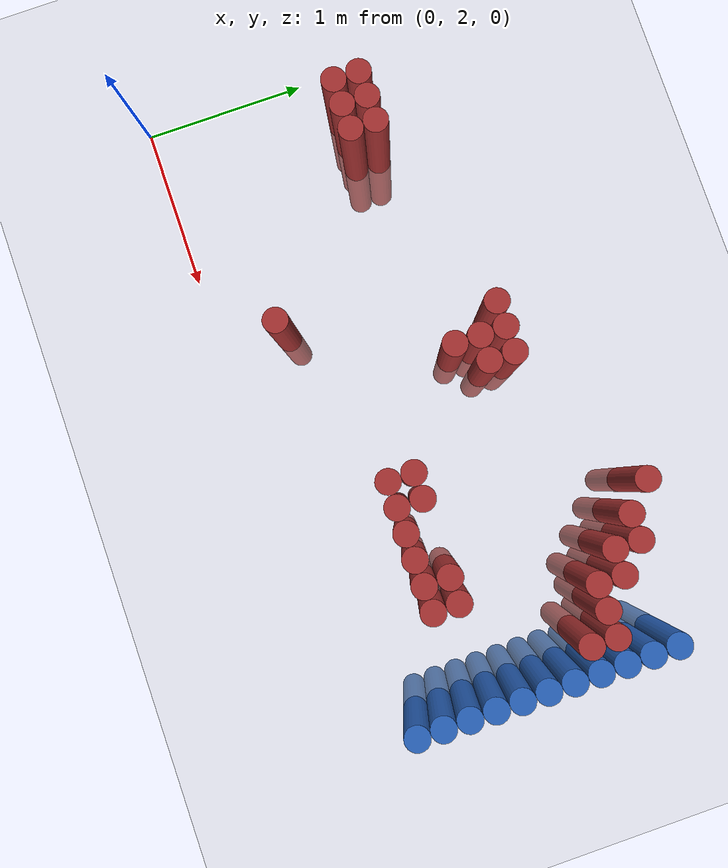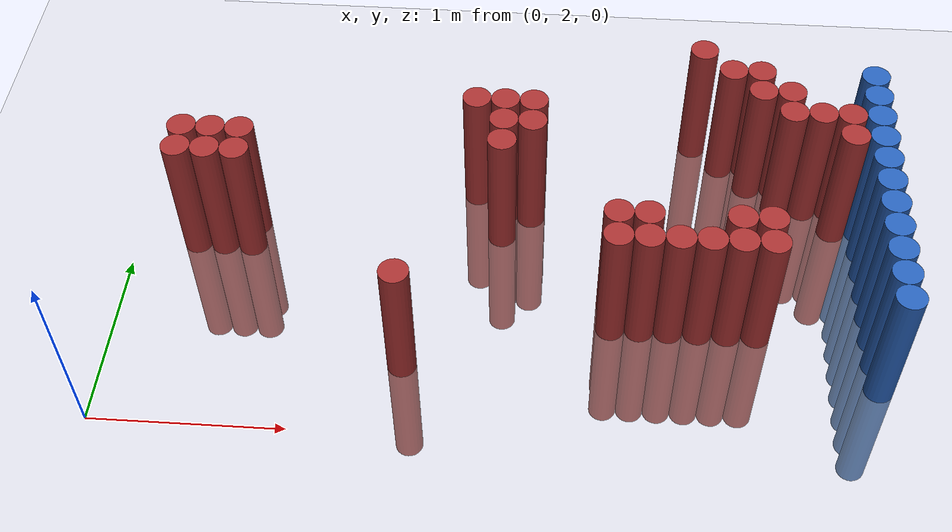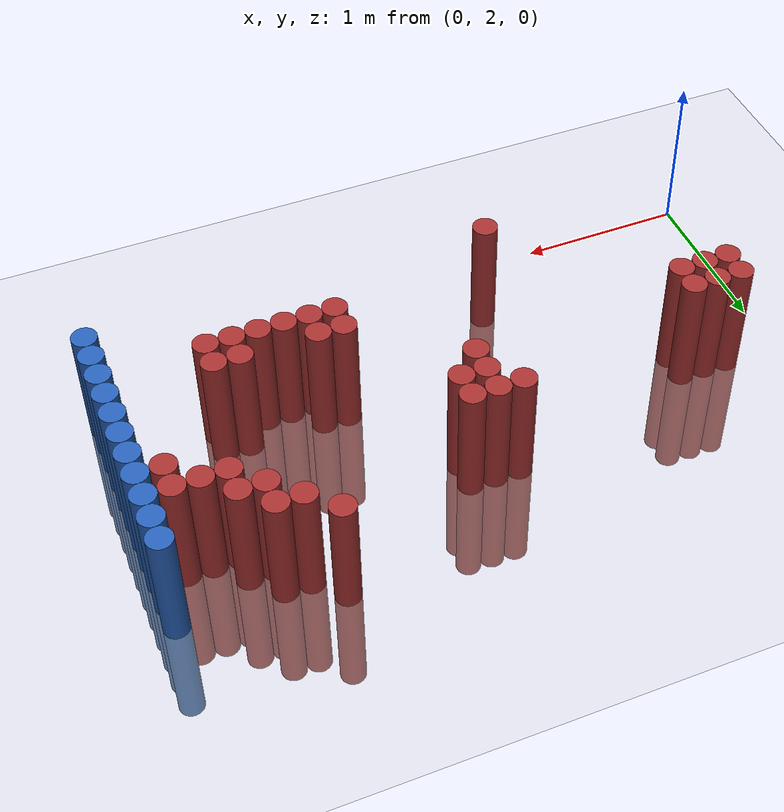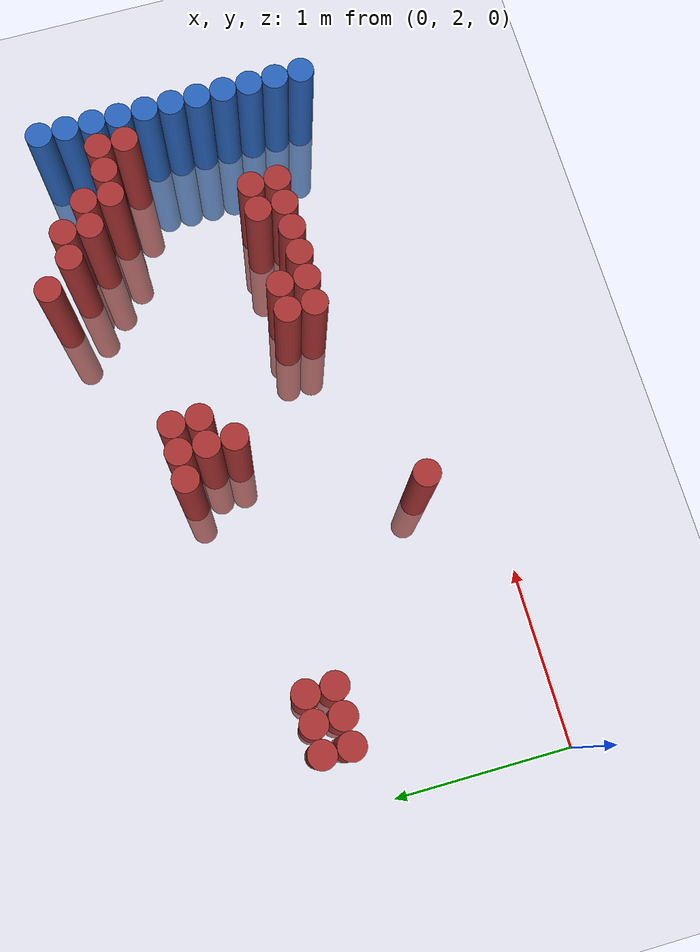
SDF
<sdf version="1.6">
 <world name="default">
  <model name="ground_plane">
   <static>1</static>
   <link name="link">
    <collision name="collision">
     <geometry><plane><normal>0 0 1</normal><size>100 100</size></plane></geometry>
     <surface><friction><ode><mu>100</mu><mu2>50</mu2></ode></friction></surface>
    </collision>
    <visual name="visual">
     <cast_shadows>0</cast_shadows>
     <geometry><plane><normal>0 0 1</normal><size>100 100</size></plane></geometry>
     <material>
      <script><uri>file://media/materials/scripts/gazebo.material</uri><name>Gazebo/Grey</name></script>
     </material>
    </visual>
   </link>
  </model>
  <model name="unit_cylinder_146">
   <static>1</static>
   <pose>3.925000 2.425000 0.000000 0.000000 0.000000 0.000000</pose>
   <link name="link">
    <inertial>
     <mass>1</mass>
     <inertia><ixx>0.145833</ixx><ixy>0</ixy><ixz>0</ixz><iyy>0.145833</iyy><iyz>0</iyz><izz>0.125</izz></inertia>
    </inertial>
    <collision name="collision">
     <geometry><cylinder><radius>0.075000</radius><length>1.5</length></cylinder></geometry>
    </collision>
    <visual name="visual">
     <geometry><cylinder><radius>0.075000</radius><length>1.5</length></cylinder></geometry>
     <material>
      <ambient>0.152000 0.379000 0.720000 1</ambient>
      <diffuse>0.152000 0.379000 0.720000 1</diffuse>
     </material>
     <material>
      <script><name>Gazebo/Grey</name><uri>file://media/materials/scripts/gazebo.material</uri></script>
     </material>
    </visual>
   </link>
  </model>
  <model name="unit_cylinder_148">
   <static>1</static>
   <pose>3.925000 2.575000 0.000000 0.000000 0.000000 0.000000</pose>
   <link name="link">
    <inertial>
     <mass>1</mass>
     <inertia><ixx>0.145833</ixx><ixy>0</ixy><ixz>0</ixz><iyy>0.145833</iyy><iyz>0</iyz><izz>0.125</izz></inertia>
    </inertial>
    <collision name="collision">
     <geometry><cylinder><radius>0.075000</radius><length>1.5</length></cylinder></geometry>
    </collision>
    <visual name="visual">
     <geometry><cylinder><radius>0.075000</radius><length>1.5</length></cylinder></geometry>
     <material>
      <ambient>0.152000 0.379000 0.720000 1</ambient>
      <diffuse>0.152000 0.379000 0.720000 1</diffuse>
     </material>
     <material>
      <script><name>Gazebo/Grey</name><uri>file://media/materials/scripts/gazebo.material</uri></script>
     </material>
    </visual>
   </link>
  </model>
  <model name="unit_cylinder_150">
   <static>1</static>
   <pose>3.925000 2.725000 0.000000 0.000000 0.000000 0.000000</pose>
   <link name="link">
    <inertial>
     <mass>1</mass>
     <inertia><ixx>0.145833</ixx><ixy>0</ixy><ixz>0</ixz><iyy>0.145833</iyy><iyz>0</iyz><izz>0.125</izz></inertia>
    </inertial>
    <collision name="collision">
     <geometry><cylinder><radius>0.075000</radius><length>1.5</length></cylinder></geometry>
    </collision>
    <visual name="visual">
     <geometry><cylinder><radius>0.075000</radius><length>1.5</length></cylinder></geometry>
     <material>
      <ambient>0.152000 0.379000 0.720000 1</ambient>
      <diffuse>0.152000 0.379000 0.720000 1</diffuse>
     </material>
     <material>
      <script><name>Gazebo/Grey</name><uri>file://media/materials/scripts/gazebo.material</uri></script>
     </material>
    </visual>
   </link>
  </model>
  <model name="unit_cylinder_152">
   <static>1</static>
   <pose>3.925000 2.875000 0.000000 0.000000 0.000000 0.000000</pose>
   <link name="link">
    <inertial>
     <mass>1</mass>
     <inertia><ixx>0.145833</ixx><ixy>0</ixy><ixz>0</ixz><iyy>0.145833</iyy><iyz>0</iyz><izz>0.125</izz></inertia>
    </inertial>
    <collision name="collision">
     <geometry><cylinder><radius>0.075000</radius><length>1.5</length></cylinder></geometry>
    </collision>
    <visual name="visual">
     <geometry><cylinder><radius>0.075000</radius><length>1.5</length></cylinder></geometry>
     <material>
      <ambient>0.152000 0.379000 0.720000 1</ambient>
      <diffuse>0.152000 0.379000 0.720000 1</diffuse>
     </material>
     <material>
      <script><name>Gazebo/Grey</name><uri>file://media/materials/scripts/gazebo.material</uri></script>
     </material>
    </visual>
   </link>
  </model>
  <model name="unit_cylinder_154">
   <static>1</static>
   <pose>3.925000 3.025000 0.000000 0.000000 0.000000 0.000000</pose>
   <link name="link">
    <inertial>
     <mass>1</mass>
     <inertia><ixx>0.145833</ixx><ixy>0</ixy><ixz>0</ixz><iyy>0.145833</iyy><iyz>0</iyz><izz>0.125</izz></inertia>
    </inertial>
    <collision name="collision">
     <geometry><cylinder><radius>0.075000</radius><length>1.5</length></cylinder></geometry>
    </collision>
    <visual name="visual">
     <geometry><cylinder><radius>0.075000</radius><length>1.5</length></cylinder></geometry>
     <material>
      <ambient>0.152000 0.379000 0.720000 1</ambient>
      <diffuse>0.152000 0.379000 0.720000 1</diffuse>
     </material>
     <material>
      <script><name>Gazebo/Grey</name><uri>file://media/materials/scripts/gazebo.material</uri></script>
     </material>
    </visual>
   </link>
  </model>
  <model name="unit_cylinder_156">
   <static>1</static>
   <pose>3.925000 3.175000 0.000000 0.000000 0.000000 0.000000</pose>
   <link name="link">
    <inertial>
     <mass>1</mass>
     <inertia><ixx>0.145833</ixx><ixy>0</ixy><ixz>0</ixz><iyy>0.145833</iyy><iyz>0</iyz><izz>0.125</izz></inertia>
    </inertial>
    <collision name="collision">
     <geometry><cylinder><radius>0.075000</radius><length>1.5</length></cylinder></geometry>
    </collision>
    <visual name="visual">
     <geometry><cylinder><radius>0.075000</radius><length>1.5</length></cylinder></geometry>
     <material>
      <ambient>0.152000 0.379000 0.720000 1</ambient>
      <diffuse>0.152000 0.379000 0.720000 1</diffuse>
     </material>
     <material>
      <script><name>Gazebo/Grey</name><uri>file://media/materials/scripts/gazebo.material</uri></script>
     </material>
    </visual>
   </link>
  </model>
  <model name="unit_cylinder_158">
   <static>1</static>
   <pose>3.925000 3.325000 0.000000 0.000000 0.000000 0.000000</pose>
   <link name="link">
    <inertial>
     <mass>1</mass>
     <inertia><ixx>0.145833</ixx><ixy>0</ixy><ixz>0</ixz><iyy>0.145833</iyy><iyz>0</iyz><izz>0.125</izz></inertia>
    </inertial>
    <collision name="collision">
     <geometry><cylinder><radius>0.075000</radius><length>1.5</length></cylinder></geometry>
    </collision>
    <visual name="visual">
     <geometry><cylinder><radius>0.075000</radius><length>1.5</length></cylinder></geometry>
     <material>
      <ambient>0.152000 0.379000 0.720000 1</ambient>
      <diffuse>0.152000 0.379000 0.720000 1</diffuse>
     </material>
     <material>
      <script><name>Gazebo/Grey</name><uri>file://media/materials/scripts/gazebo.material</uri></script>
     </material>
    </visual>
   </link>
  </model>
  <model name="unit_cylinder_160">
   <static>1</static>
   <pose>3.925000 3.475000 0.000000 0.000000 0.000000 0.000000</pose>
   <link name="link">
    <inertial>
     <mass>1</mass>
     <inertia><ixx>0.145833</ixx><ixy>0</ixy><ixz>0</ixz><iyy>0.145833</iyy><iyz>0</iyz><izz>0.125</izz></inertia>
    </inertial>
    <collision name="collision">
     <geometry><cylinder><radius>0.075000</radius><length>1.5</length></cylinder></geometry>
    </collision>
    <visual name="visual">
     <geometry><cylinder><radius>0.075000</radius><length>1.5</length></cylinder></geometry>
     <material>
      <ambient>0.152000 0.379000 0.720000 1</ambient>
      <diffuse>0.152000 0.379000 0.720000 1</diffuse>
     </material>
     <material>
      <script><name>Gazebo/Grey</name><uri>file://media/materials/scripts/gazebo.material</uri></script>
     </material>
    </visual>
   </link>
  </model>
  <model name="unit_cylinder_162">
   <static>1</static>
   <pose>3.925000 3.625000 0.000000 0.000000 0.000000 0.000000</pose>
   <link name="link">
    <inertial>
     <mass>1</mass>
     <inertia><ixx>0.145833</ixx><ixy>0</ixy><ixz>0</ixz><iyy>0.145833</iyy><iyz>0</iyz><izz>0.125</izz></inertia>
    </inertial>
    <collision name="collision">
     <geometry><cylinder><radius>0.075000</radius><length>1.5</length></cylinder></geometry>
    </collision>
    <visual name="visual">
     <geometry><cylinder><radius>0.075000</radius><length>1.5</length></cylinder></geometry>
     <material>
      <ambient>0.152000 0.379000 0.720000 1</ambient>
      <diffuse>0.152000 0.379000 0.720000 1</diffuse>
     </material>
     <material>
      <script><name>Gazebo/Grey</name><uri>file://media/materials/scripts/gazebo.material</uri></script>
     </material>
    </visual>
   </link>
  </model>
  <model name="unit_cylinder_164">
   <static>1</static>
   <pose>3.925000 3.775000 0.000000 0.000000 0.000000 0.000000</pose>
   <link name="link">
    <inertial>
     <mass>1</mass>
     <inertia><ixx>0.145833</ixx><ixy>0</ixy><ixz>0</ixz><iyy>0.145833</iyy><iyz>0</iyz><izz>0.125</izz></inertia>
    </inertial>
    <collision name="collision">
     <geometry><cylinder><radius>0.075000</radius><length>1.5</length></cylinder></geometry>
    </collision>
    <visual name="visual">
     <geometry><cylinder><radius>0.075000</radius><length>1.5</length></cylinder></geometry>
     <material>
      <ambient>0.152000 0.379000 0.720000 1</ambient>
      <diffuse>0.152000 0.379000 0.720000 1</diffuse>
     </material>
     <material>
      <script><name>Gazebo/Grey</name><uri>file://media/materials/scripts/gazebo.material</uri></script>
     </material>
    </visual>
   </link>
  </model>
  <model name="unit_cylinder_166">
   <static>1</static>
   <pose>3.925000 3.925000 0.000000 0.000000 0.000000 0.000000</pose>
   <link name="link">
    <inertial>
     <mass>1</mass>
     <inertia><ixx>0.145833</ixx><ixy>0</ixy><ixz>0</ixz><iyy>0.145833</iyy><iyz>0</iyz><izz>0.125</izz></inertia>
    </inertial>
    <collision name="collision">
     <geometry><cylinder><radius>0.075000</radius><length>1.5</length></cylinder></geometry>
    </collision>
    <visual name="visual">
     <geometry><cylinder><radius>0.075000</radius><length>1.5</length></cylinder></geometry>
     <material>
      <ambient>0.152000 0.379000 0.720000 1</ambient>
      <diffuse>0.152000 0.379000 0.720000 1</diffuse>
     </material>
     <material>
      <script><name>Gazebo/Grey</name><uri>file://media/materials/scripts/gazebo.material</uri></script>
     </material>
    </visual>
   </link>
  </model>
  <model name="unit_cylinder_337">
   <static>1</static>
   <pose>0.325000 3.175000 0.000000 0.000000 0.000000 0.000000</pose>
   <link name="link">
    <inertial>
     <mass>1</mass>
     <inertia><ixx>0.145833</ixx><ixy>0</ixy><ixz>0</ixz><iyy>0.145833</iyy><iyz>0</iyz><izz>0.125</izz></inertia>
    </inertial>
    <collision name="collision">
     <geometry><cylinder><radius>0.075000</radius><length>1.5</length></cylinder></geometry>
    </collision>
    <visual name="visual">
     <geometry><cylinder><radius>0.075000</radius><length>1.5</length></cylinder></geometry>
     <material>
      <ambient>0.648000 0.192000 0.192000 1</ambient>
      <diffuse>0.648000 0.192000 0.192000 1</diffuse>
     </material>
     <material>
      <script><name>Gazebo/Grey</name><uri>file://media/materials/scripts/gazebo.material</uri></script>
     </material>
    </visual>
   </link>
  </model>
  <model name="unit_cylinder_338">
   <static>1</static>
   <pose>0.325000 3.325000 0.000000 0.000000 0.000000 0.000000</pose>
   <link name="link">
    <inertial>
     <mass>1</mass>
     <inertia><ixx>0.145833</ixx><ixy>0</ixy><ixz>0</ixz><iyy>0.145833</iyy><iyz>0</iyz><izz>0.125</izz></inertia>
    </inertial>
    <collision name="collision">
     <geometry><cylinder><radius>0.075000</radius><length>1.5</length></cylinder></geometry>
    </collision>
    <visual name="visual">
     <geometry><cylinder><radius>0.075000</radius><length>1.5</length></cylinder></geometry>
     <material>
      <ambient>0.648000 0.192000 0.192000 1</ambient>
      <diffuse>0.648000 0.192000 0.192000 1</diffuse>
     </material>
     <material>
      <script><name>Gazebo/Grey</name><uri>file://media/materials/scripts/gazebo.material</uri></script>
     </material>
    </visual>
   </link>
  </model>
  <model name="unit_cylinder_345">
   <static>1</static>
   <pose>0.475000 3.175000 0.000000 0.000000 0.000000 0.000000</pose>
   <link name="link">
    <inertial>
     <mass>1</mass>
     <inertia><ixx>0.145833</ixx><ixy>0</ixy><ixz>0</ixz><iyy>0.145833</iyy><iyz>0</iyz><izz>0.125</izz></inertia>
    </inertial>
    <collision name="collision">
     <geometry><cylinder><radius>0.075000</radius><length>1.5</length></cylinder></geometry>
    </collision>
    <visual name="visual">
     <geometry><cylinder><radius>0.075000</radius><length>1.5</length></cylinder></geometry>
     <material>
      <ambient>0.648000 0.192000 0.192000 1</ambient>
      <diffuse>0.648000 0.192000 0.192000 1</diffuse>
     </material>
     <material>
      <script><name>Gazebo/Grey</name><uri>file://media/materials/scripts/gazebo.material</uri></script>
     </material>
    </visual>
   </link>
  </model>
  <model name="unit_cylinder_346">
   <static>1</static>
   <pose>0.475000 3.325000 0.000000 0.000000 0.000000 0.000000</pose>
   <link name="link">
    <inertial>
     <mass>1</mass>
     <inertia><ixx>0.145833</ixx><ixy>0</ixy><ixz>0</ixz><iyy>0.145833</iyy><iyz>0</iyz><izz>0.125</izz></inertia>
    </inertial>
    <collision name="collision">
     <geometry><cylinder><radius>0.075000</radius><length>1.5</length></cylinder></geometry>
    </collision>
    <visual name="visual">
     <geometry><cylinder><radius>0.075000</radius><length>1.5</length></cylinder></geometry>
     <material>
      <ambient>0.648000 0.192000 0.192000 1</ambient>
      <diffuse>0.648000 0.192000 0.192000 1</diffuse>
     </material>
     <material>
      <script><name>Gazebo/Grey</name><uri>file://media/materials/scripts/gazebo.material</uri></script>
     </material>
    </visual>
   </link>
  </model>
  <model name="unit_cylinder_360">
   <static>1</static>
   <pose>0.625000 3.175000 0.000000 0.000000 0.000000 0.000000</pose>
   <link name="link">
    <inertial>
     <mass>1</mass>
     <inertia><ixx>0.145833</ixx><ixy>0</ixy><ixz>0</ixz><iyy>0.145833</iyy><iyz>0</iyz><izz>0.125</izz></inertia>
    </inertial>
    <collision name="collision">
     <geometry><cylinder><radius>0.075000</radius><length>1.5</length></cylinder></geometry>
    </collision>
    <visual name="visual">
     <geometry><cylinder><radius>0.075000</radius><length>1.5</length></cylinder></geometry>
     <material>
      <ambient>0.648000 0.192000 0.192000 1</ambient>
      <diffuse>0.648000 0.192000 0.192000 1</diffuse>
     </material>
     <material>
      <script><name>Gazebo/Grey</name><uri>file://media/materials/scripts/gazebo.material</uri></script>
     </material>
    </visual>
   </link>
  </model>
  <model name="unit_cylinder_361">
   <static>1</static>
   <pose>0.625000 3.325000 0.000000 0.000000 0.000000 0.000000</pose>
   <link name="link">
    <inertial>
     <mass>1</mass>
     <inertia><ixx>0.145833</ixx><ixy>0</ixy><ixz>0</ixz><iyy>0.145833</iyy><iyz>0</iyz><izz>0.125</izz></inertia>
    </inertial>
    <collision name="collision">
     <geometry><cylinder><radius>0.075000</radius><length>1.5</length></cylinder></geometry>
    </collision>
    <visual name="visual">
     <geometry><cylinder><radius>0.075000</radius><length>1.5</length></cylinder></geometry>
     <material>
      <ambient>0.648000 0.192000 0.192000 1</ambient>
      <diffuse>0.648000 0.192000 0.192000 1</diffuse>
     </material>
     <material>
      <script><name>Gazebo/Grey</name><uri>file://media/materials/scripts/gazebo.material</uri></script>
     </material>
    </visual>
   </link>
  </model>
  <model name="unit_cylinder_384">
   <static>1</static>
   <pose>1.525000 2.425000 0.000000 0.000000 0.000000 0.000000</pose>
   <link name="link">
    <inertial>
     <mass>1</mass>
     <inertia><ixx>0.145833</ixx><ixy>0</ixy><ixz>0</ixz><iyy>0.145833</iyy><iyz>0</iyz><izz>0.125</izz></inertia>
    </inertial>
    <collision name="collision">
     <geometry><cylinder><radius>0.075000</radius><length>1.5</length></cylinder></geometry>
    </collision>
    <visual name="visual">
     <geometry><cylinder><radius>0.075000</radius><length>1.5</length></cylinder></geometry>
     <material>
      <ambient>0.648000 0.192000 0.192000 1</ambient>
      <diffuse>0.648000 0.192000 0.192000 1</diffuse>
     </material>
     <material>
      <script><name>Gazebo/Grey</name><uri>file://media/materials/scripts/gazebo.material</uri></script>
     </material>
    </visual>
   </link>
  </model>
  <model name="unit_cylinder_391">
   <static>1</static>
   <pose>1.825000 3.625000 0.000000 0.000000 0.000000 0.000000</pose>
   <link name="link">
    <inertial>
     <mass>1</mass>
     <inertia><ixx>0.145833</ixx><ixy>0</ixy><ixz>0</ixz><iyy>0.145833</iyy><iyz>0</iyz><izz>0.125</izz></inertia>
    </inertial>
    <collision name="collision">
     <geometry><cylinder><radius>0.075000</radius><length>1.5</length></cylinder></geometry>
    </collision>
    <visual name="visual">
     <geometry><cylinder><radius>0.075000</radius><length>1.5</length></cylinder></geometry>
     <material>
      <ambient>0.648000 0.192000 0.192000 1</ambient>
      <diffuse>0.648000 0.192000 0.192000 1</diffuse>
     </material>
     <material>
      <script><name>Gazebo/Grey</name><uri>file://media/materials/scripts/gazebo.material</uri></script>
     </material>
    </visual>
   </link>
  </model>
  <model name="unit_cylinder_394">
   <static>1</static>
   <pose>1.975000 3.325000 0.000000 0.000000 0.000000 0.000000</pose>
   <link name="link">
    <inertial>
     <mass>1</mass>
     <inertia><ixx>0.145833</ixx><ixy>0</ixy><ixz>0</ixz><iyy>0.145833</iyy><iyz>0</iyz><izz>0.125</izz></inertia>
    </inertial>
    <collision name="collision">
     <geometry><cylinder><radius>0.075000</radius><length>1.5</length></cylinder></geometry>
    </collision>
    <visual name="visual">
     <geometry><cylinder><radius>0.075000</radius><length>1.5</length></cylinder></geometry>
     <material>
      <ambient>0.648000 0.192000 0.192000 1</ambient>
      <diffuse>0.648000 0.192000 0.192000 1</diffuse>
     </material>
     <material>
      <script><name>Gazebo/Grey</name><uri>file://media/materials/scripts/gazebo.material</uri></script>
     </material>
    </visual>
   </link>
  </model>
  <model name="unit_cylinder_395">
   <static>1</static>
   <pose>1.975000 3.475000 0.000000 0.000000 0.000000 0.000000</pose>
   <link name="link">
    <inertial>
     <mass>1</mass>
     <inertia><ixx>0.145833</ixx><ixy>0</ixy><ixz>0</ixz><iyy>0.145833</iyy><iyz>0</iyz><izz>0.125</izz></inertia>
    </inertial>
    <collision name="collision">
     <geometry><cylinder><radius>0.075000</radius><length>1.5</length></cylinder></geometry>
    </collision>
    <visual name="visual">
     <geometry><cylinder><radius>0.075000</radius><length>1.5</length></cylinder></geometry>
     <material>
      <ambient>0.648000 0.192000 0.192000 1</ambient>
      <diffuse>0.648000 0.192000 0.192000 1</diffuse>
     </material>
     <material>
      <script><name>Gazebo/Grey</name><uri>file://media/materials/scripts/gazebo.material</uri></script>
     </material>
    </visual>
   </link>
  </model>
  <model name="unit_cylinder_396">
   <static>1</static>
   <pose>1.975000 3.625000 0.000000 0.000000 0.000000 0.000000</pose>
   <link name="link">
    <inertial>
     <mass>1</mass>
     <inertia><ixx>0.145833</ixx><ixy>0</ixy><ixz>0</ixz><iyy>0.145833</iyy><iyz>0</iyz><izz>0.125</izz></inertia>
    </inertial>
    <collision name="collision">
     <geometry><cylinder><radius>0.075000</radius><length>1.5</length></cylinder></geometry>
    </collision>
    <visual name="visual">
     <geometry><cylinder><radius>0.075000</radius><length>1.5</length></cylinder></geometry>
     <material>
      <ambient>0.648000 0.192000 0.192000 1</ambient>
      <diffuse>0.648000 0.192000 0.192000 1</diffuse>
     </material>
     <material>
      <script><name>Gazebo/Grey</name><uri>file://media/materials/scripts/gazebo.material</uri></script>
     </material>
    </visual>
   </link>
  </model>
  <model name="unit_cylinder_401">
   <static>1</static>
   <pose>2.125000 3.475000 0.000000 0.000000 0.000000 0.000000</pose>
   <link name="link">
    <inertial>
     <mass>1</mass>
     <inertia><ixx>0.145833</ixx><ixy>0</ixy><ixz>0</ixz><iyy>0.145833</iyy><iyz>0</iyz><izz>0.125</izz></inertia>
    </inertial>
    <collision name="collision">
     <geometry><cylinder><radius>0.075000</radius><length>1.5</length></cylinder></geometry>
    </collision>
    <visual name="visual">
     <geometry><cylinder><radius>0.075000</radius><length>1.5</length></cylinder></geometry>
     <material>
      <ambient>0.648000 0.192000 0.192000 1</ambient>
      <diffuse>0.648000 0.192000 0.192000 1</diffuse>
     </material>
     <material>
      <script><name>Gazebo/Grey</name><uri>file://media/materials/scripts/gazebo.material</uri></script>
     </material>
    </visual>
   </link>
  </model>
  <model name="unit_cylinder_402">
   <static>1</static>
   <pose>2.125000 3.625000 0.000000 0.000000 0.000000 0.000000</pose>
   <link name="link">
    <inertial>
     <mass>1</mass>
     <inertia><ixx>0.145833</ixx><ixy>0</ixy><ixz>0</ixz><iyy>0.145833</iyy><iyz>0</iyz><izz>0.125</izz></inertia>
    </inertial>
    <collision name="collision">
     <geometry><cylinder><radius>0.075000</radius><length>1.5</length></cylinder></geometry>
    </collision>
    <visual name="visual">
     <geometry><cylinder><radius>0.075000</radius><length>1.5</length></cylinder></geometry>
     <material>
      <ambient>0.648000 0.192000 0.192000 1</ambient>
      <diffuse>0.648000 0.192000 0.192000 1</diffuse>
     </material>
     <material>
      <script><name>Gazebo/Grey</name><uri>file://media/materials/scripts/gazebo.material</uri></script>
     </material>
    </visual>
   </link>
  </model>
  <model name="unit_cylinder_422">
   <static>1</static>
   <pose>2.575000 2.725000 0.000000 0.000000 0.000000 0.000000</pose>
   <link name="link">
    <inertial>
     <mass>1</mass>
     <inertia><ixx>0.145833</ixx><ixy>0</ixy><ixz>0</ixz><iyy>0.145833</iyy><iyz>0</iyz><izz>0.125</izz></inertia>
    </inertial>
    <collision name="collision">
     <geometry><cylinder><radius>0.075000</radius><length>1.5</length></cylinder></geometry>
    </collision>
    <visual name="visual">
     <geometry><cylinder><radius>0.075000</radius><length>1.5</length></cylinder></geometry>
     <material>
      <ambient>0.648000 0.192000 0.192000 1</ambient>
      <diffuse>0.648000 0.192000 0.192000 1</diffuse>
     </material>
     <material>
      <script><name>Gazebo/Grey</name><uri>file://media/materials/scripts/gazebo.material</uri></script>
     </material>
    </visual>
   </link>
  </model>
  <model name="unit_cylinder_423">
   <static>1</static>
   <pose>2.575000 2.875000 0.000000 0.000000 0.000000 0.000000</pose>
   <link name="link">
    <inertial>
     <mass>1</mass>
     <inertia><ixx>0.145833</ixx><ixy>0</ixy><ixz>0</ixz><iyy>0.145833</iyy><iyz>0</iyz><izz>0.125</izz></inertia>
    </inertial>
    <collision name="collision">
     <geometry><cylinder><radius>0.075000</radius><length>1.5</length></cylinder></geometry>
    </collision>
    <visual name="visual">
     <geometry><cylinder><radius>0.075000</radius><length>1.5</length></cylinder></geometry>
     <material>
      <ambient>0.648000 0.192000 0.192000 1</ambient>
      <diffuse>0.648000 0.192000 0.192000 1</diffuse>
     </material>
     <material>
      <script><name>Gazebo/Grey</name><uri>file://media/materials/scripts/gazebo.material</uri></script>
     </material>
    </visual>
   </link>
  </model>
  <model name="unit_cylinder_427">
   <static>1</static>
   <pose>2.725000 2.725000 0.000000 0.000000 0.000000 0.000000</pose>
   <link name="link">
    <inertial>
     <mass>1</mass>
     <inertia><ixx>0.145833</ixx><ixy>0</ixy><ixz>0</ixz><iyy>0.145833</iyy><iyz>0</iyz><izz>0.125</izz></inertia>
    </inertial>
    <collision name="collision">
     <geometry><cylinder><radius>0.075000</radius><length>1.5</length></cylinder></geometry>
    </collision>
    <visual name="visual">
     <geometry><cylinder><radius>0.075000</radius><length>1.5</length></cylinder></geometry>
     <material>
      <ambient>0.648000 0.192000 0.192000 1</ambient>
      <diffuse>0.648000 0.192000 0.192000 1</diffuse>
     </material>
     <material>
      <script><name>Gazebo/Grey</name><uri>file://media/materials/scripts/gazebo.material</uri></script>
     </material>
    </visual>
   </link>
  </model>
  <model name="unit_cylinder_428">
   <static>1</static>
   <pose>2.725000 2.875000 0.000000 0.000000 0.000000 0.000000</pose>
   <link name="link">
    <inertial>
     <mass>1</mass>
     <inertia><ixx>0.145833</ixx><ixy>0</ixy><ixz>0</ixz><iyy>0.145833</iyy><iyz>0</iyz><izz>0.125</izz></inertia>
    </inertial>
    <collision name="collision">
     <geometry><cylinder><radius>0.075000</radius><length>1.5</length></cylinder></geometry>
    </collision>
    <visual name="visual">
     <geometry><cylinder><radius>0.075000</radius><length>1.5</length></cylinder></geometry>
     <material>
      <ambient>0.648000 0.192000 0.192000 1</ambient>
      <diffuse>0.648000 0.192000 0.192000 1</diffuse>
     </material>
     <material>
      <script><name>Gazebo/Grey</name><uri>file://media/materials/scripts/gazebo.material</uri></script>
     </material>
    </visual>
   </link>
  </model>
  <model name="unit_cylinder_432">
   <static>1</static>
   <pose>2.875000 2.725000 0.000000 0.000000 0.000000 0.000000</pose>
   <link name="link">
    <inertial>
     <mass>1</mass>
     <inertia><ixx>0.145833</ixx><ixy>0</ixy><ixz>0</ixz><iyy>0.145833</iyy><iyz>0</iyz><izz>0.125</izz></inertia>
    </inertial>
    <collision name="collision">
     <geometry><cylinder><radius>0.075000</radius><length>1.5</length></cylinder></geometry>
    </collision>
    <visual name="visual">
     <geometry><cylinder><radius>0.075000</radius><length>1.5</length></cylinder></geometry>
     <material>
      <ambient>0.648000 0.192000 0.192000 1</ambient>
      <diffuse>0.648000 0.192000 0.192000 1</diffuse>
     </material>
     <material>
      <script><name>Gazebo/Grey</name><uri>file://media/materials/scripts/gazebo.material</uri></script>
     </material>
    </visual>
   </link>
  </model>
  <model name="unit_cylinder_436">
   <static>1</static>
   <pose>3.025000 2.725000 0.000000 0.000000 0.000000 0.000000</pose>
   <link name="link">
    <inertial>
     <mass>1</mass>
     <inertia><ixx>0.145833</ixx><ixy>0</ixy><ixz>0</ixz><iyy>0.145833</iyy><iyz>0</iyz><izz>0.125</izz></inertia>
    </inertial>
    <collision name="collision">
     <geometry><cylinder><radius>0.075000</radius><length>1.5</length></cylinder></geometry>
    </collision>
    <visual name="visual">
     <geometry><cylinder><radius>0.075000</radius><length>1.5</length></cylinder></geometry>
     <material>
      <ambient>0.648000 0.192000 0.192000 1</ambient>
      <diffuse>0.648000 0.192000 0.192000 1</diffuse>
     </material>
     <material>
      <script><name>Gazebo/Grey</name><uri>file://media/materials/scripts/gazebo.material</uri></script>
     </material>
    </visual>
   </link>
  </model>
  <model name="unit_cylinder_437">
   <static>1</static>
   <pose>3.025000 4.075000 0.000000 0.000000 0.000000 0.000000</pose>
   <link name="link">
    <inertial>
     <mass>1</mass>
     <inertia><ixx>0.145833</ixx><ixy>0</ixy><ixz>0</ixz><iyy>0.145833</iyy><iyz>0</iyz><izz>0.125</izz></inertia>
    </inertial>
    <collision name="collision">
     <geometry><cylinder><radius>0.075000</radius><length>1.5</length></cylinder></geometry>
    </collision>
    <visual name="visual">
     <geometry><cylinder><radius>0.075000</radius><length>1.5</length></cylinder></geometry>
     <material>
      <ambient>0.648000 0.192000 0.192000 1</ambient>
      <diffuse>0.648000 0.192000 0.192000 1</diffuse>
     </material>
     <material>
      <script><name>Gazebo/Grey</name><uri>file://media/materials/scripts/gazebo.material</uri></script>
     </material>
    </visual>
   </link>
  </model>
  <model name="unit_cylinder_443">
   <static>1</static>
   <pose>3.175000 2.725000 0.000000 0.000000 0.000000 0.000000</pose>
   <link name="link">
    <inertial>
     <mass>1</mass>
     <inertia><ixx>0.145833</ixx><ixy>0</ixy><ixz>0</ixz><iyy>0.145833</iyy><iyz>0</iyz><izz>0.125</izz></inertia>
    </inertial>
    <collision name="collision">
     <geometry><cylinder><radius>0.075000</radius><length>1.5</length></cylinder></geometry>
    </collision>
    <visual name="visual">
     <geometry><cylinder><radius>0.075000</radius><length>1.5</length></cylinder></geometry>
     <material>
      <ambient>0.648000 0.192000 0.192000 1</ambient>
      <diffuse>0.648000 0.192000 0.192000 1</diffuse>
     </material>
     <material>
      <script><name>Gazebo/Grey</name><uri>file://media/materials/scripts/gazebo.material</uri></script>
     </material>
    </visual>
   </link>
  </model>
  <model name="unit_cylinder_444">
   <static>1</static>
   <pose>3.175000 2.875000 0.000000 0.000000 0.000000 0.000000</pose>
   <link name="link">
    <inertial>
     <mass>1</mass>
     <inertia><ixx>0.145833</ixx><ixy>0</ixy><ixz>0</ixz><iyy>0.145833</iyy><iyz>0</iyz><izz>0.125</izz></inertia>
    </inertial>
    <collision name="collision">
     <geometry><cylinder><radius>0.075000</radius><length>1.5</length></cylinder></geometry>
    </collision>
    <visual name="visual">
     <geometry><cylinder><radius>0.075000</radius><length>1.5</length></cylinder></geometry>
     <material>
      <ambient>0.648000 0.192000 0.192000 1</ambient>
      <diffuse>0.648000 0.192000 0.192000 1</diffuse>
     </material>
     <material>
      <script><name>Gazebo/Grey</name><uri>file://media/materials/scripts/gazebo.material</uri></script>
     </material>
    </visual>
   </link>
  </model>
  <model name="unit_cylinder_445">
   <static>1</static>
   <pose>3.175000 3.925000 0.000000 0.000000 0.000000 0.000000</pose>
   <link name="link">
    <inertial>
     <mass>1</mass>
     <inertia><ixx>0.145833</ixx><ixy>0</ixy><ixz>0</ixz><iyy>0.145833</iyy><iyz>0</iyz><izz>0.125</izz></inertia>
    </inertial>
    <collision name="collision">
     <geometry><cylinder><radius>0.075000</radius><length>1.5</length></cylinder></geometry>
    </collision>
    <visual name="visual">
     <geometry><cylinder><radius>0.075000</radius><length>1.5</length></cylinder></geometry>
     <material>
      <ambient>0.648000 0.192000 0.192000 1</ambient>
      <diffuse>0.648000 0.192000 0.192000 1</diffuse>
     </material>
     <material>
      <script><name>Gazebo/Grey</name><uri>file://media/materials/scripts/gazebo.material</uri></script>
     </material>
    </visual>
   </link>
  </model>
  <model name="unit_cylinder_451">
   <static>1</static>
   <pose>3.325000 2.725000 0.000000 0.000000 0.000000 0.000000</pose>
   <link name="link">
    <inertial>
     <mass>1</mass>
     <inertia><ixx>0.145833</ixx><ixy>0</ixy><ixz>0</ixz><iyy>0.145833</iyy><iyz>0</iyz><izz>0.125</izz></inertia>
    </inertial>
    <collision name="collision">
     <geometry><cylinder><radius>0.075000</radius><length>1.5</length></cylinder></geometry>
    </collision>
    <visual name="visual">
     <geometry><cylinder><radius>0.075000</radius><length>1.5</length></cylinder></geometry>
     <material>
      <ambient>0.648000 0.192000 0.192000 1</ambient>
      <diffuse>0.648000 0.192000 0.192000 1</diffuse>
     </material>
     <material>
      <script><name>Gazebo/Grey</name><uri>file://media/materials/scripts/gazebo.material</uri></script>
     </material>
    </visual>
   </link>
  </model>
  <model name="unit_cylinder_452">
   <static>1</static>
   <pose>3.325000 2.875000 0.000000 0.000000 0.000000 0.000000</pose>
   <link name="link">
    <inertial>
     <mass>1</mass>
     <inertia><ixx>0.145833</ixx><ixy>0</ixy><ixz>0</ixz><iyy>0.145833</iyy><iyz>0</iyz><izz>0.125</izz></inertia>
    </inertial>
    <collision name="collision">
     <geometry><cylinder><radius>0.075000</radius><length>1.5</length></cylinder></geometry>
    </collision>
    <visual name="visual">
     <geometry><cylinder><radius>0.075000</radius><length>1.5</length></cylinder></geometry>
     <material>
      <ambient>0.648000 0.192000 0.192000 1</ambient>
      <diffuse>0.648000 0.192000 0.192000 1</diffuse>
     </material>
     <material>
      <script><name>Gazebo/Grey</name><uri>file://media/materials/scripts/gazebo.material</uri></script>
     </material>
    </visual>
   </link>
  </model>
  <model name="unit_cylinder_453">
   <static>1</static>
   <pose>3.325000 3.775000 0.000000 0.000000 0.000000 0.000000</pose>
   <link name="link">
    <inertial>
     <mass>1</mass>
     <inertia><ixx>0.145833</ixx><ixy>0</ixy><ixz>0</ixz><iyy>0.145833</iyy><iyz>0</iyz><izz>0.125</izz></inertia>
    </inertial>
    <collision name="collision">
     <geometry><cylinder><radius>0.075000</radius><length>1.5</length></cylinder></geometry>
    </collision>
    <visual name="visual">
     <geometry><cylinder><radius>0.075000</radius><length>1.5</length></cylinder></geometry>
     <material>
      <ambient>0.648000 0.192000 0.192000 1</ambient>
      <diffuse>0.648000 0.192000 0.192000 1</diffuse>
     </material>
     <material>
      <script><name>Gazebo/Grey</name><uri>file://media/materials/scripts/gazebo.material</uri></script>
     </material>
    </visual>
   </link>
  </model>
  <model name="unit_cylinder_454">
   <static>1</static>
   <pose>3.325000 3.925000 0.000000 0.000000 0.000000 0.000000</pose>
   <link name="link">
    <inertial>
     <mass>1</mass>
     <inertia><ixx>0.145833</ixx><ixy>0</ixy><ixz>0</ixz><iyy>0.145833</iyy><iyz>0</iyz><izz>0.125</izz></inertia>
    </inertial>
    <collision name="collision">
     <geometry><cylinder><radius>0.075000</radius><length>1.5</length></cylinder></geometry>
    </collision>
    <visual name="visual">
     <geometry><cylinder><radius>0.075000</radius><length>1.5</length></cylinder></geometry>
     <material>
      <ambient>0.648000 0.192000 0.192000 1</ambient>
      <diffuse>0.648000 0.192000 0.192000 1</diffuse>
     </material>
     <material>
      <script><name>Gazebo/Grey</name><uri>file://media/materials/scripts/gazebo.material</uri></script>
     </material>
    </visual>
   </link>
  </model>
  <model name="unit_cylinder_458">
   <static>1</static>
   <pose>3.475000 3.625000 0.000000 0.000000 0.000000 0.000000</pose>
   <link name="link">
    <inertial>
     <mass>1</mass>
     <inertia><ixx>0.145833</ixx><ixy>0</ixy><ixz>0</ixz><iyy>0.145833</iyy><iyz>0</iyz><izz>0.125</izz></inertia>
    </inertial>
    <collision name="collision">
     <geometry><cylinder><radius>0.075000</radius><length>1.5</length></cylinder></geometry>
    </collision>
    <visual name="visual">
     <geometry><cylinder><radius>0.075000</radius><length>1.5</length></cylinder></geometry>
     <material>
      <ambient>0.648000 0.192000 0.192000 1</ambient>
      <diffuse>0.648000 0.192000 0.192000 1</diffuse>
     </material>
     <material>
      <script><name>Gazebo/Grey</name><uri>file://media/materials/scripts/gazebo.material</uri></script>
     </material>
    </visual>
   </link>
  </model>
  <model name="unit_cylinder_459">
   <static>1</static>
   <pose>3.475000 3.775000 0.000000 0.000000 0.000000 0.000000</pose>
   <link name="link">
    <inertial>
     <mass>1</mass>
     <inertia><ixx>0.145833</ixx><ixy>0</ixy><ixz>0</ixz><iyy>0.145833</iyy><iyz>0</iyz><izz>0.125</izz></inertia>
    </inertial>
    <collision name="collision">
     <geometry><cylinder><radius>0.075000</radius><length>1.5</length></cylinder></geometry>
    </collision>
    <visual name="visual">
     <geometry><cylinder><radius>0.075000</radius><length>1.5</length></cylinder></geometry>
     <material>
      <ambient>0.648000 0.192000 0.192000 1</ambient>
      <diffuse>0.648000 0.192000 0.192000 1</diffuse>
     </material>
     <material>
      <script><name>Gazebo/Grey</name><uri>file://media/materials/scripts/gazebo.material</uri></script>
     </material>
    </visual>
   </link>
  </model>
  <model name="unit_cylinder_465">
   <static>1</static>
   <pose>3.625000 3.625000 0.000000 0.000000 0.000000 0.000000</pose>
   <link name="link">
    <inertial>
     <mass>1</mass>
     <inertia><ixx>0.145833</ixx><ixy>0</ixy><ixz>0</ixz><iyy>0.145833</iyy><iyz>0</iyz><izz>0.125</izz></inertia>
    </inertial>
    <collision name="collision">
     <geometry><cylinder><radius>0.075000</radius><length>1.5</length></cylinder></geometry>
    </collision>
    <visual name="visual">
     <geometry><cylinder><radius>0.075000</radius><length>1.5</length></cylinder></geometry>
     <material>
      <ambient>0.648000 0.192000 0.192000 1</ambient>
      <diffuse>0.648000 0.192000 0.192000 1</diffuse>
     </material>
     <material>
      <script><name>Gazebo/Grey</name><uri>file://media/materials/scripts/gazebo.material</uri></script>
     </material>
    </visual>
   </link>
  </model>
  <model name="unit_cylinder_481">
   <static>1</static>
   <pose>3.775000 3.475000 0.000000 0.000000 0.000000 0.000000</pose>
   <link name="link">
    <inertial>
     <mass>1</mass>
     <inertia><ixx>0.145833</ixx><ixy>0</ixy><ixz>0</ixz><iyy>0.145833</iyy><iyz>0</iyz><izz>0.125</izz></inertia>
    </inertial>
    <collision name="collision">
     <geometry><cylinder><radius>0.075000</radius><length>1.5</length></cylinder></geometry>
    </collision>
    <visual name="visual">
     <geometry><cylinder><radius>0.075000</radius><length>1.5</length></cylinder></geometry>
     <material>
      <ambient>0.648000 0.192000 0.192000 1</ambient>
      <diffuse>0.648000 0.192000 0.192000 1</diffuse>
     </material>
     <material>
      <script><name>Gazebo/Grey</name><uri>file://media/materials/scripts/gazebo.material</uri></script>
     </material>
    </visual>
   </link>
  </model>
  <model name="unit_cylinder_482">
   <static>1</static>
   <pose>3.775000 3.625000 0.000000 0.000000 0.000000 0.000000</pose>
   <link name="link">
    <inertial>
     <mass>1</mass>
     <inertia><ixx>0.145833</ixx><ixy>0</ixy><ixz>0</ixz><iyy>0.145833</iyy><iyz>0</iyz><izz>0.125</izz></inertia>
    </inertial>
    <collision name="collision">
     <geometry><cylinder><radius>0.075000</radius><length>1.5</length></cylinder></geometry>
    </collision>
    <visual name="visual">
     <geometry><cylinder><radius>0.075000</radius><length>1.5</length></cylinder></geometry>
     <material>
      <ambient>0.648000 0.192000 0.192000 1</ambient>
      <diffuse>0.648000 0.192000 0.192000 1</diffuse>
     </material>
     <material>
      <script><name>Gazebo/Grey</name><uri>file://media/materials/scripts/gazebo.material</uri></script>
     </material>
    </visual>
   </link>
  </model>
  <model name="unit_cylinder_516">
   <static>1</static>
   <pose>3.925000 2.425000 0.000000 0.000000 0.000000 0.000000</pose>
   <link name="link">
    <inertial>
     <mass>1</mass>
     <inertia><ixx>0.145833</ixx><ixy>0</ixy><ixz>0</ixz><iyy>0.145833</iyy><iyz>0</iyz><izz>0.125</izz></inertia>
    </inertial>
    <collision name="collision">
     <geometry><cylinder><radius>0.075000</radius><length>1.5</length></cylinder></geometry>
    </collision>
    <visual name="visual">
     <geometry><cylinder><radius>0.075000</radius><length>1.5</length></cylinder></geometry>
     <material>
      <ambient>0.152000 0.379000 0.720000 1</ambient>
      <diffuse>0.152000 0.379000 0.720000 1</diffuse>
     </material>
     <material>
      <script><name>Gazebo/Grey</name><uri>file://media/materials/scripts/gazebo.material</uri></script>
     </material>
    </visual>
   </link>
  </model>
  <model name="unit_cylinder_517">
   <static>1</static>
   <pose>3.925000 2.575000 0.000000 0.000000 0.000000 0.000000</pose>
   <link name="link">
    <inertial>
     <mass>1</mass>
     <inertia><ixx>0.145833</ixx><ixy>0</ixy><ixz>0</ixz><iyy>0.145833</iyy><iyz>0</iyz><izz>0.125</izz></inertia>
    </inertial>
    <collision name="collision">
     <geometry><cylinder><radius>0.075000</radius><length>1.5</length></cylinder></geometry>
    </collision>
    <visual name="visual">
     <geometry><cylinder><radius>0.075000</radius><length>1.5</length></cylinder></geometry>
     <material>
      <ambient>0.152000 0.379000 0.720000 1</ambient>
      <diffuse>0.152000 0.379000 0.720000 1</diffuse>
     </material>
     <material>
      <script><name>Gazebo/Grey</name><uri>file://media/materials/scripts/gazebo.material</uri></script>
     </material>
    </visual>
   </link>
  </model>
  <model name="unit_cylinder_518">
   <static>1</static>
   <pose>3.925000 2.725000 0.000000 0.000000 0.000000 0.000000</pose>
   <link name="link">
    <inertial>
     <mass>1</mass>
     <inertia><ixx>0.145833</ixx><ixy>0</ixy><ixz>0</ixz><iyy>0.145833</iyy><iyz>0</iyz><izz>0.125</izz></inertia>
    </inertial>
    <collision name="collision">
     <geometry><cylinder><radius>0.075000</radius><length>1.5</length></cylinder></geometry>
    </collision>
    <visual name="visual">
     <geometry><cylinder><radius>0.075000</radius><length>1.5</length></cylinder></geometry>
     <material>
      <ambient>0.152000 0.379000 0.720000 1</ambient>
      <diffuse>0.152000 0.379000 0.720000 1</diffuse>
     </material>
     <material>
      <script><name>Gazebo/Grey</name><uri>file://media/materials/scripts/gazebo.material</uri></script>
     </material>
    </visual>
   </link>
  </model>
  <model name="unit_cylinder_519">
   <static>1</static>
   <pose>3.925000 2.875000 0.000000 0.000000 0.000000 0.000000</pose>
   <link name="link">
    <inertial>
     <mass>1</mass>
     <inertia><ixx>0.145833</ixx><ixy>0</ixy><ixz>0</ixz><iyy>0.145833</iyy><iyz>0</iyz><izz>0.125</izz></inertia>
    </inertial>
    <collision name="collision">
     <geometry><cylinder><radius>0.075000</radius><length>1.5</length></cylinder></geometry>
    </collision>
    <visual name="visual">
     <geometry><cylinder><radius>0.075000</radius><length>1.5</length></cylinder></geometry>
     <material>
      <ambient>0.152000 0.379000 0.720000 1</ambient>
      <diffuse>0.152000 0.379000 0.720000 1</diffuse>
     </material>
     <material>
      <script><name>Gazebo/Grey</name><uri>file://media/materials/scripts/gazebo.material</uri></script>
     </material>
    </visual>
   </link>
  </model>
  <model name="unit_cylinder_520">
   <static>1</static>
   <pose>3.925000 3.025000 0.000000 0.000000 0.000000 0.000000</pose>
   <link name="link">
    <inertial>
     <mass>1</mass>
     <inertia><ixx>0.145833</ixx><ixy>0</ixy><ixz>0</ixz><iyy>0.145833</iyy><iyz>0</iyz><izz>0.125</izz></inertia>
    </inertial>
    <collision name="collision">
     <geometry><cylinder><radius>0.075000</radius><length>1.5</length></cylinder></geometry>
    </collision>
    <visual name="visual">
     <geometry><cylinder><radius>0.075000</radius><length>1.5</length></cylinder></geometry>
     <material>
      <ambient>0.152000 0.379000 0.720000 1</ambient>
      <diffuse>0.152000 0.379000 0.720000 1</diffuse>
     </material>
     <material>
      <script><name>Gazebo/Grey</name><uri>file://media/materials/scripts/gazebo.material</uri></script>
     </material>
    </visual>
   </link>
  </model>
  <model name="unit_cylinder_521">
   <static>1</static>
   <pose>3.925000 3.175000 0.000000 0.000000 0.000000 0.000000</pose>
   <link name="link">
    <inertial>
     <mass>1</mass>
     <inertia><ixx>0.145833</ixx><ixy>0</ixy><ixz>0</ixz><iyy>0.145833</iyy><iyz>0</iyz><izz>0.125</izz></inertia>
    </inertial>
    <collision name="collision">
     <geometry><cylinder><radius>0.075000</radius><length>1.5</length></cylinder></geometry>
    </collision>
    <visual name="visual">
     <geometry><cylinder><radius>0.075000</radius><length>1.5</length></cylinder></geometry>
     <material>
      <ambient>0.152000 0.379000 0.720000 1</ambient>
      <diffuse>0.152000 0.379000 0.720000 1</diffuse>
     </material>
     <material>
      <script><name>Gazebo/Grey</name><uri>file://media/materials/scripts/gazebo.material</uri></script>
     </material>
    </visual>
   </link>
  </model>
  <model name="unit_cylinder_522">
   <static>1</static>
   <pose>3.925000 3.325000 0.000000 0.000000 0.000000 0.000000</pose>
   <link name="link">
    <inertial>
     <mass>1</mass>
     <inertia><ixx>0.145833</ixx><ixy>0</ixy><ixz>0</ixz><iyy>0.145833</iyy><iyz>0</iyz><izz>0.125</izz></inertia>
    </inertial>
    <collision name="collision">
     <geometry><cylinder><radius>0.075000</radius><length>1.5</length></cylinder></geometry>
    </collision>
    <visual name="visual">
     <geometry><cylinder><radius>0.075000</radius><length>1.5</length></cylinder></geometry>
     <material>
      <ambient>0.152000 0.379000 0.720000 1</ambient>
      <diffuse>0.152000 0.379000 0.720000 1</diffuse>
     </material>
     <material>
      <script><name>Gazebo/Grey</name><uri>file://media/materials/scripts/gazebo.material</uri></script>
     </material>
    </visual>
   </link>
  </model>
  <model name="unit_cylinder_523">
   <static>1</static>
   <pose>3.925000 3.475000 0.000000 0.000000 0.000000 0.000000</pose>
   <link name="link">
    <inertial>
     <mass>1</mass>
     <inertia><ixx>0.145833</ixx><ixy>0</ixy><ixz>0</ixz><iyy>0.145833</iyy><iyz>0</iyz><izz>0.125</izz></inertia>
    </inertial>
    <collision name="collision">
     <geometry><cylinder><radius>0.075000</radius><length>1.5</length></cylinder></geometry>
    </collision>
    <visual name="visual">
     <geometry><cylinder><radius>0.075000</radius><length>1.5</length></cylinder></geometry>
     <material>
      <ambient>0.152000 0.379000 0.720000 1</ambient>
      <diffuse>0.152000 0.379000 0.720000 1</diffuse>
     </material>
     <material>
      <script><name>Gazebo/Grey</name><uri>file://media/materials/scripts/gazebo.material</uri></script>
     </material>
    </visual>
   </link>
  </model>
  <model name="unit_cylinder_524">
   <static>1</static>
   <pose>3.925000 3.625000 0.000000 0.000000 0.000000 0.000000</pose>
   <link name="link">
    <inertial>
     <mass>1</mass>
     <inertia><ixx>0.145833</ixx><ixy>0</ixy><ixz>0</ixz><iyy>0.145833</iyy><iyz>0</iyz><izz>0.125</izz></inertia>
    </inertial>
    <collision name="collision">
     <geometry><cylinder><radius>0.075000</radius><length>1.5</length></cylinder></geometry>
    </collision>
    <visual name="visual">
     <geometry><cylinder><radius>0.075000</radius><length>1.5</length></cylinder></geometry>
     <material>
      <ambient>0.152000 0.379000 0.720000 1</ambient>
      <diffuse>0.152000 0.379000 0.720000 1</diffuse>
     </material>
     <material>
      <script><name>Gazebo/Grey</name><uri>file://media/materials/scripts/gazebo.material</uri></script>
     </material>
    </visual>
   </link>
  </model>
  <model name="unit_cylinder_525">
   <static>1</static>
   <pose>3.925000 3.775000 0.000000 0.000000 0.000000 0.000000</pose>
   <link name="link">
    <inertial>
     <mass>1</mass>
     <inertia><ixx>0.145833</ixx><ixy>0</ixy><ixz>0</ixz><iyy>0.145833</iyy><iyz>0</iyz><izz>0.125</izz></inertia>
    </inertial>
    <collision name="collision">
     <geometry><cylinder><radius>0.075000</radius><length>1.5</length></cylinder></geometry>
    </collision>
    <visual name="visual">
     <geometry><cylinder><radius>0.075000</radius><length>1.5</length></cylinder></geometry>
     <material>
      <ambient>0.152000 0.379000 0.720000 1</ambient>
      <diffuse>0.152000 0.379000 0.720000 1</diffuse>
     </material>
     <material>
      <script><name>Gazebo/Grey</name><uri>file://media/materials/scripts/gazebo.material</uri></script>
     </material>
    </visual>
   </link>
  </model>
  <model name="unit_cylinder_526">
   <static>1</static>
   <pose>3.925000 3.925000 0.000000 0.000000 0.000000 0.000000</pose>
   <link name="link">
    <inertial>
     <mass>1</mass>
     <inertia><ixx>0.145833</ixx><ixy>0</ixy><ixz>0</ixz><iyy>0.145833</iyy><iyz>0</iyz><izz>0.125</izz></inertia>
    </inertial>
    <collision name="collision">
     <geometry><cylinder><radius>0.075000</radius><length>1.5</length></cylinder></geometry>
    </collision>
    <visual name="visual">
     <geometry><cylinder><radius>0.075000</radius><length>1.5</length></cylinder></geometry>
     <material>
      <ambient>0.152000 0.379000 0.720000 1</ambient>
      <diffuse>0.152000 0.379000 0.720000 1</diffuse>
     </material>
     <material>
      <script><name>Gazebo/Grey</name><uri>file://media/materials/scripts/gazebo.material</uri></script>
     </material>
    </visual>
   </link>
  </model>
 </world>
</sdf>
